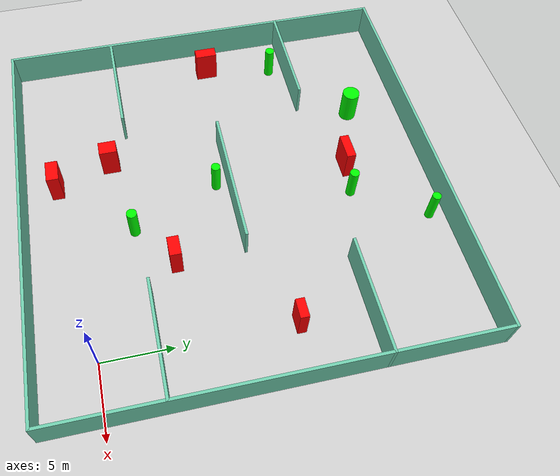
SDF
<sdf version="1.7">
 <world name="default">
  <light name="sun" type="directional">
   <pose>0 0 10 0 -0 0</pose>
   <diffuse>0.8 0.8 0.8 1</diffuse>
   <specular>0.2 0.2 0.2 1</specular>
   <attenuation>
    <range>1000</range>
    <constant>0.9</constant>
    <linear>0.01</linear>
    <quadratic>0.001</quadratic>
   </attenuation>
   <direction>-0.5 0.1 -0.9</direction>
   <spot><inner_angle>0</inner_angle><outer_angle>0</outer_angle><falloff>0</falloff></spot>
  </light>
  <model name="ground_plane">
   <static>1</static>
   <link name="link">
    <collision name="collision">
     <geometry><plane><normal>0 0 1</normal><size>100 100</size></plane></geometry>
     <surface>
      <contact><collide_bitmask>65535</collide_bitmask></contact>
      <friction><ode><mu>100</mu><mu2>50</mu2></ode></friction>
     </surface>
    </collision>
    <visual name="visual">
     <cast_shadows>0</cast_shadows>
     <geometry><plane><normal>0 0 1</normal><size>100 100</size></plane></geometry>
     <material>
      <script><uri>file://media/materials/scripts/gazebo.material</uri><name>Gazebo/Grey</name></script>
     </material>
    </visual>
   </link>
  </model>
  <gravity>0 0 -9.8</gravity>
  <magnetic_field>6e-06 2.3e-05 -4.2e-05</magnetic_field>
  <atmosphere type="adiabatic"/>
  <physics type="ode">
   <max_step_size>0.001</max_step_size>
   <real_time_factor>1</real_time_factor>
   <real_time_update_rate>1000</real_time_update_rate>
  </physics>
  <scene><ambient>0.4 0.4 0.4 1</ambient><background>0.7 0.7 0.7 1</background><shadows>1</shadows></scene>
  <spherical_coordinates>
   <surface_model>EARTH_WGS84</surface_model>
   <latitude_deg>0</latitude_deg>
   <longitude_deg>0</longitude_deg>
   <elevation>0</elevation>
   <heading_deg>0</heading_deg>
  </spherical_coordinates>
  <model name="my_base_walls">
   <link name="Wall_10">
    <collision name="Wall_10_Collision">
     <geometry><box><size>8.2 0.2 2.5</size></box></geometry>
     <pose>0 0 1.25 0 -0 0</pose>
    </collision>
    <visual name="Wall_10_Visual">
     <pose>0 0 1.25 0 -0 0</pose>
     <geometry><box><size>8.2 0.2 2.5</size></box></geometry>
     <material>
      <script><uri>file://media/materials/scripts/gazebo.material</uri><name>Gazebo/Grey</name></script>
      <ambient>0.435294 0.796078 0.67451 1</ambient>
     </material>
     <meta><layer>0</layer></meta>
    </visual>
    <pose>-11 -7 0 0 -0 0</pose>
   </link>
   <link name="Wall_12">
    <collision name="Wall_12_Collision">
     <geometry><box><size>8.2 0.2 2.5</size></box></geometry>
     <pose>0 0 1.25 0 -0 0</pose>
    </collision>
    <visual name="Wall_12_Visual">
     <pose>0 0 1.25 0 -0 0</pose>
     <geometry><box><size>8.2 0.2 2.5</size></box></geometry>
     <material>
      <script><uri>file://media/materials/scripts/gazebo.material</uri><name>Gazebo/Grey</name></script>
      <ambient>0.435294 0.796078 0.67451 1</ambient>
     </material>
     <meta><layer>0</layer></meta>
    </visual>
    <pose>-11 7 0 0 -0 0</pose>
   </link>
   <link name="Wall_14">
    <collision name="Wall_14_Collision">
     <geometry><box><size>8.2 0.2 2.5</size></box></geometry>
     <pose>0 0 1.25 0 -0 0</pose>
    </collision>
    <visual name="Wall_14_Visual">
     <pose>0 0 1.25 0 -0 0</pose>
     <geometry><box><size>8.2 0.2 2.5</size></box></geometry>
     <material>
      <script><uri>file://media/materials/scripts/gazebo.material</uri><name>Gazebo/Grey</name></script>
      <ambient>0.435294 0.796078 0.67451 1</ambient>
     </material>
     <meta><layer>0</layer></meta>
    </visual>
    <pose>11 7 0 0 -0 3.14159</pose>
   </link>
   <link name="Wall_16">
    <collision name="Wall_16_Collision">
     <geometry><box><size>10.2 0.2 2.5</size></box></geometry>
     <pose>0 0 1.25 0 -0 0</pose>
    </collision>
    <visual name="Wall_16_Visual">
     <pose>0 0 1.25 0 -0 0</pose>
     <geometry><box><size>10.2 0.2 2.5</size></box></geometry>
     <material>
      <script><uri>file://media/materials/scripts/gazebo.material</uri><name>Gazebo/Grey</name></script>
      <ambient>0.435294 0.796078 0.67451 1</ambient>
     </material>
     <meta><layer>0</layer></meta>
    </visual>
    <pose>0 0 0 0 -0 3.14159</pose>
   </link>
   <link name="Wall_2">
    <collision name="Wall_2_Collision">
     <geometry><box><size>30.2 0.2 2.5</size></box></geometry>
     <pose>0 0 1.25 0 -0 0</pose>
    </collision>
    <visual name="Wall_2_Visual">
     <pose>0 0 1.25 0 -0 0</pose>
     <geometry><box><size>30.2 0.2 2.5</size></box></geometry>
     <material>
      <script><uri>file://media/materials/scripts/gazebo.material</uri><name>Gazebo/Grey</name></script>
      <ambient>0.435294 0.796078 0.67451 1</ambient>
     </material>
     <meta><layer>0</layer></meta>
    </visual>
    <pose>0 -15 0 0 -0 3.14159</pose>
   </link>
   <link name="Wall_3">
    <collision name="Wall_3_Collision">
     <geometry><box><size>30.2 0.2 2.5</size></box></geometry>
     <pose>0 0 1.25 0 -0 0</pose>
    </collision>
    <visual name="Wall_3_Visual">
     <pose>0 0 1.25 0 -0 0</pose>
     <geometry><box><size>30.2 0.2 2.5</size></box></geometry>
     <material>
      <script><uri>file://media/materials/scripts/gazebo.material</uri><name>Gazebo/Grey</name></script>
      <ambient>0.435294 0.796078 0.67451 1</ambient>
     </material>
     <meta><layer>0</layer></meta>
    </visual>
    <pose>-15 0 0 0 -0 1.5708</pose>
   </link>
   <link name="Wall_4">
    <collision name="Wall_4_Collision">
     <geometry><box><size>30.2 0.2 2.5</size></box></geometry>
     <pose>0 0 1.25 0 -0 0</pose>
    </collision>
    <visual name="Wall_4_Visual">
     <pose>0 0 1.25 0 -0 0</pose>
     <geometry><box><size>30.2 0.2 2.5</size></box></geometry>
     <material>
      <script><uri>file://media/materials/scripts/gazebo.material</uri><name>Gazebo/Grey</name></script>
      <ambient>0.435294 0.796078 0.67451 1</ambient>
     </material>
     <meta><layer>0</layer></meta>
    </visual>
    <pose>0 15 0 0 -0 0</pose>
   </link>
   <link name="Wall_6">
    <collision name="Wall_6_Collision">
     <geometry><box><size>30.2 0.2 2.5</size></box></geometry>
     <pose>0 0 1.25 0 -0 0</pose>
    </collision>
    <visual name="Wall_6_Visual">
     <pose>0 0 1.25 0 -0 0</pose>
     <geometry><box><size>30.2 0.2 2.5</size></box></geometry>
     <material>
      <script><uri>file://media/materials/scripts/gazebo.material</uri><name>Gazebo/Grey</name></script>
      <ambient>0.435294 0.796078 0.67451 1</ambient>
     </material>
     <meta><layer>0</layer></meta>
    </visual>
    <pose>15 0 0 0 -0 1.5708</pose>
   </link>
   <link name="Wall_8">
    <collision name="Wall_8_Collision">
     <geometry><box><size>8.2 0.2 2.5</size></box></geometry>
     <pose>0 0 1.25 0 -0 0</pose>
    </collision>
    <visual name="Wall_8_Visual">
     <pose>0 0 1.25 0 -0 0</pose>
     <geometry><box><size>8.2 0.2 2.5</size></box></geometry>
     <material>
      <script><uri>file://media/materials/scripts/gazebo.material</uri><name>Gazebo/Grey</name></script>
      <ambient>0.435294 0.796078 0.67451 1</ambient>
     </material>
     <meta><layer>0</layer></meta>
    </visual>
    <pose>11 -7 0 0 -0 3.14159</pose>
   </link>
   <static>1</static>
   <pose>-11 11 0 0 -0 0</pose>
  </model>
  <model name="cylinder1">
   <static>1</static>
   <link name="link">
    <inertial>
     <mass>1</mass>
     <inertia><ixx>0.5</ixx><ixy>0</ixy><ixz>0</ixz><iyy>0.5</iyy><iyz>0</iyz><izz>1</izz></inertia>
    </inertial>
    <collision name="collision">
     <geometry><cylinder><radius>0.3403626551632242</radius><length>2.5</length></cylinder></geometry>
    </collision>
    <visual name="visual">
     <geometry><cylinder><radius>0.3403626551632242</radius><length>2.5</length></cylinder></geometry>
     <material>
      <ambient>0 1 0 1</ambient>
      <diffuse>0 1 0 1</diffuse>
      <specular>0.1 0.1 0.1 1</specular>
      <emissive>0 0 0 0</emissive>
     </material>
    </visual>
   </link>
   <pose>-9.27398273675543 19.73323644731864 1.25 0 0 0</pose>
  </model>
  <model name="cylinder2">
   <static>1</static>
   <link name="link">
    <inertial>
     <mass>1</mass>
     <inertia><ixx>0.5</ixx><ixy>0</ixy><ixz>0</ixz><iyy>0.5</iyy><iyz>0</iyz><izz>1</izz></inertia>
    </inertial>
    <collision name="collision">
     <geometry><cylinder><radius>0.31057215942548816</radius><length>2.5</length></cylinder></geometry>
    </collision>
    <visual name="visual">
     <geometry><cylinder><radius>0.31057215942548816</radius><length>2.5</length></cylinder></geometry>
     <material>
      <ambient>0 1 0 1</ambient>
      <diffuse>0 1 0 1</diffuse>
      <specular>0.1 0.1 0.1 1</specular>
      <emissive>0 0 0 0</emissive>
     </material>
    </visual>
   </link>
   <pose>-6.154875420781307 24.74859638048447 1.25 0 0 0</pose>
  </model>
  <model name="cylinder3">
   <static>1</static>
   <link name="link">
    <inertial>
     <mass>1</mass>
     <inertia><ixx>0.5</ixx><ixy>0</ixy><ixz>0</ixz><iyy>0.5</iyy><iyz>0</iyz><izz>1</izz></inertia>
    </inertial>
    <collision name="collision">
     <geometry><cylinder><radius>0.6382574401027616</radius><length>2.5</length></cylinder></geometry>
    </collision>
    <visual name="visual">
     <geometry><cylinder><radius>0.6382574401027616</radius><length>2.5</length></cylinder></geometry>
     <material>
      <ambient>0 1 0 1</ambient>
      <diffuse>0 1 0 1</diffuse>
      <specular>0.1 0.1 0.1 1</specular>
      <emissive>0 0 0 0</emissive>
     </material>
    </visual>
   </link>
   <pose>-16.716588764874906 21.857609872489725 1.25 0 0 0</pose>
  </model>
  <model name="cylinder4">
   <static>1</static>
   <link name="link">
    <inertial>
     <mass>1</mass>
     <inertia><ixx>0.5</ixx><ixy>0</ixy><ixz>0</ixz><iyy>0.5</iyy><iyz>0</iyz><izz>1</izz></inertia>
    </inertial>
    <collision name="collision">
     <geometry><cylinder><radius>0.3354968719784914</radius><length>2.5</length></cylinder></geometry>
    </collision>
    <visual name="visual">
     <geometry><cylinder><radius>0.3354968719784914</radius><length>2.5</length></cylinder></geometry>
     <material>
      <ambient>0 1 0 1</ambient>
      <diffuse>0 1 0 1</diffuse>
      <specular>0.1 0.1 0.1 1</specular>
      <emissive>0 0 0 0</emissive>
     </material>
    </visual>
   </link>
   <pose>-11.899245891950546 10.054757913539568 1.25 0 0 0</pose>
  </model>
  <model name="cylinder5">
   <static>1</static>
   <link name="link">
    <inertial>
     <mass>1</mass>
     <inertia><ixx>0.5</ixx><ixy>0</ixy><ixz>0</ixz><iyy>0.5</iyy><iyz>0</iyz><izz>1</izz></inertia>
    </inertial>
    <collision name="collision">
     <geometry><cylinder><radius>0.3511067687211542</radius><length>2.5</length></cylinder></geometry>
    </collision>
    <visual name="visual">
     <geometry><cylinder><radius>0.3511067687211542</radius><length>2.5</length></cylinder></geometry>
     <material>
      <ambient>0 1 0 1</ambient>
      <diffuse>0 1 0 1</diffuse>
      <specular>0.1 0.1 0.1 1</specular>
      <emissive>0 0 0 0</emissive>
     </material>
    </visual>
   </link>
   <pose>-22.58627788924127 16.739619649214617 1.25 0 0 0</pose>
  </model>
  <model name="cylinder6">
   <static>1</static>
   <link name="link">
    <inertial>
     <mass>1</mass>
     <inertia><ixx>0.5</ixx><ixy>0</ixy><ixz>0</ixz><iyy>0.5</iyy><iyz>0</iyz><izz>1</izz></inertia>
    </inertial>
    <collision name="collision">
     <geometry><cylinder><radius>0.3707927798219474</radius><length>2.5</length></cylinder></geometry>
    </collision>
    <visual name="visual">
     <geometry><cylinder><radius>0.3707927798219474</radius><length>2.5</length></cylinder></geometry>
     <material>
      <ambient>0 1 0 1</ambient>
      <diffuse>0 1 0 1</diffuse>
      <specular>0.1 0.1 0.1 1</specular>
      <emissive>0 0 0 0</emissive>
     </material>
    </visual>
   </link>
   <pose>-9.190833427425618 3.5813506589008473 1.25 0 0 0</pose>
  </model>
  <model name="box1">
   <static>1</static>
   <link name="link">
    <inertial>
     <mass>1</mass>
     <inertia><ixx>0.083</ixx><ixy>0</ixy><ixz>0</ixz><iyy>0.083</iyy><iyz>0</iyz><izz>0.083</izz></inertia>
    </inertial>
    <collision name="collision">
     <geometry><box><size>1.4432207289455594 0.8200147899070831 2.5</size></box></geometry>
    </collision>
    <visual name="visual">
     <geometry><box><size>1.4432207289455594 0.8200147899070831 2.5</size></box></geometry>
     <material>
      <ambient>1 0 0 1</ambient>
      <diffuse>1 0 0 1</diffuse>
      <specular>0.1 0.1 0.1 1</specular>
      <emissive>0 0 0 0</emissive>
     </material>
    </visual>
    <sensor name="my_contact" type="contact">
     <contact><collision>box_collision</collision><topic>__default_topic__</topic></contact>
    </sensor>
   </link>
   <pose>-6.078897356141951 6.042995481730774 1.25 0 0 0</pose>
  </model>
  <model name="box2">
   <static>1</static>
   <link name="link">
    <inertial>
     <mass>1</mass>
     <inertia><ixx>0.083</ixx><ixy>0</ixy><ixz>0</ixz><iyy>0.083</iyy><iyz>0</iyz><izz>0.083</izz></inertia>
    </inertial>
    <collision name="collision">
     <geometry><box><size>1.6376637611401486 0.8791435834688811 2.5</size></box></geometry>
    </collision>
    <visual name="visual">
     <geometry><box><size>1.6376637611401486 0.8791435834688811 2.5</size></box></geometry>
     <material>
      <ambient>1 0 0 1</ambient>
      <diffuse>1 0 0 1</diffuse>
      <specular>0.1 0.1 0.1 1</specular>
      <emissive>0 0 0 0</emissive>
     </material>
    </visual>
    <sensor name="my_contact" type="contact">
     <contact><collision>box_collision</collision><topic>__default_topic__</topic></contact>
    </sensor>
   </link>
   <pose>-14.023893451290322 -1.5868894981650046 1.25 0 0 0</pose>
  </model>
  <model name="box3">
   <static>1</static>
   <link name="link">
    <inertial>
     <mass>1</mass>
     <inertia><ixx>0.083</ixx><ixy>0</ixy><ixz>0</ixz><iyy>0.083</iyy><iyz>0</iyz><izz>0.083</izz></inertia>
    </inertial>
    <collision name="collision">
     <geometry><box><size>1.0564705611640361 1.289574133587359 2.5</size></box></geometry>
    </collision>
    <visual name="visual">
     <geometry><box><size>1.0564705611640361 1.289574133587359 2.5</size></box></geometry>
     <material>
      <ambient>1 0 0 1</ambient>
      <diffuse>1 0 0 1</diffuse>
      <specular>0.1 0.1 0.1 1</specular>
      <emissive>0 0 0 0</emissive>
     </material>
    </visual>
    <sensor name="my_contact" type="contact">
     <contact><collision>box_collision</collision><topic>__default_topic__</topic></contact>
    </sensor>
   </link>
   <pose>-15.317217080078994 2.559025007989028 1.25 0 0 0</pose>
  </model>
  <model name="box4">
   <static>1</static>
   <link name="link">
    <inertial>
     <mass>1</mass>
     <inertia><ixx>0.083</ixx><ixy>0</ixy><ixz>0</ixz><iyy>0.083</iyy><iyz>0</iyz><izz>0.083</izz></inertia>
    </inertial>
    <collision name="collision">
     <geometry><box><size>1.9398209872578258 0.6706482036850284 2.5</size></box></geometry>
    </collision>
    <visual name="visual">
     <geometry><box><size>1.9398209872578258 0.6706482036850284 2.5</size></box></geometry>
     <material>
      <ambient>1 0 0 1</ambient>
      <diffuse>1 0 0 1</diffuse>
      <specular>0.1 0.1 0.1 1</specular>
      <emissive>0 0 0 0</emissive>
     </material>
    </visual>
    <sensor name="my_contact" type="contact">
     <contact><collision>box_collision</collision><topic>__default_topic__</topic></contact>
    </sensor>
   </link>
   <pose>-11.73801235994676 19.997846059194796 1.25 0 0 0</pose>
  </model>
  <model name="box5">
   <static>1</static>
   <link name="link">
    <inertial>
     <mass>1</mass>
     <inertia><ixx>0.083</ixx><ixy>0</ixy><ixz>0</ixz><iyy>0.083</iyy><iyz>0</iyz><izz>0.083</izz></inertia>
    </inertial>
    <collision name="collision">
     <geometry><box><size>1.3341246600762608 0.6235189105809125 2.5</size></box></geometry>
    </collision>
    <visual name="visual">
     <geometry><box><size>1.3341246600762608 0.6235189105809125 2.5</size></box></geometry>
     <material>
      <ambient>1 0 0 1</ambient>
      <diffuse>1 0 0 1</diffuse>
      <specular>0.1 0.1 0.1 1</specular>
      <emissive>0 0 0 0</emissive>
     </material>
    </visual>
    <sensor name="my_contact" type="contact">
     <contact><collision>box_collision</collision><topic>__default_topic__</topic></contact>
    </sensor>
   </link>
   <pose>0.06850035133983923 13.225262330301057 1.25 0 0 0</pose>
  </model>
  <model name="box6">
   <static>1</static>
   <link name="link">
    <inertial>
     <mass>1</mass>
     <inertia><ixx>0.083</ixx><ixy>0</ixy><ixz>0</ixz><iyy>0.083</iyy><iyz>0</iyz><izz>0.083</izz></inertia>
    </inertial>
    <collision name="collision">
     <geometry><box><size>0.8643386015715222 1.6381648005055087 2.5</size></box></geometry>
    </collision>
    <visual name="visual">
     <geometry><box><size>0.8643386015715222 1.6381648005055087 2.5</size></box></geometry>
     <material>
      <ambient>1 0 0 1</ambient>
      <diffuse>1 0 0 1</diffuse>
      <specular>0.1 0.1 0.1 1</specular>
      <emissive>0 0 0 0</emissive>
     </material>
    </visual>
    <sensor name="my_contact" type="contact">
     <contact><collision>box_collision</collision><topic>__default_topic__</topic></contact>
    </sensor>
   </link>
   <pose>-23.48836477206159 11.520867042730247 1.25 0 0 0</pose>
  </model>
 </world>
</sdf>
